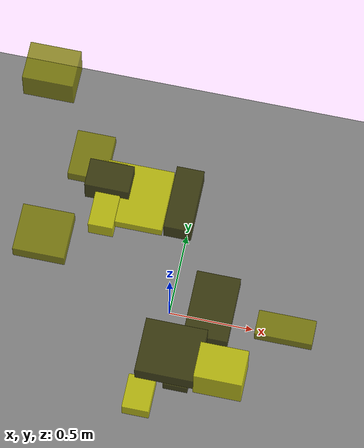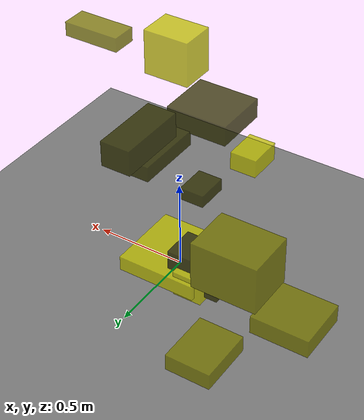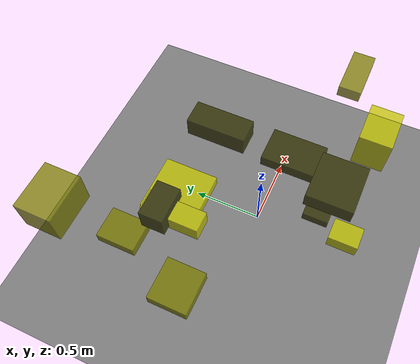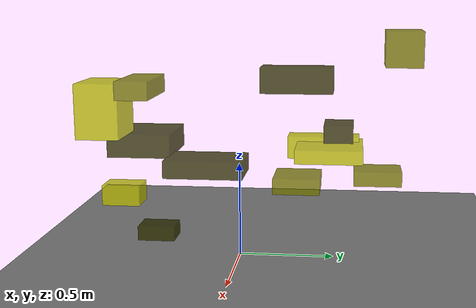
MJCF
<?xml version="1.0"?>
<mujoco model="obstacle_scene">
  <compiler angle="radian" coordinate="local"/>
  <option timestep="0.001" gravity="0 0 -9.81"/>

  <asset>
    <material name="obstacle_mat" rgba="0.8 0.8 0.0 0.8"/>
    <material name="ground_mat" rgba="0.5 0.5 0.5 1"/>
  </asset>

  <worldbody>
    <!-- Ground plane -->
    <geom name="ground" type="plane" size="3 3 0.1" material="ground_mat"/>

    <!-- Obstacles -->
    <body name="obstacle_0" pos="0.106850 -0.472723 0.640422">
      <geom name="obs_0" type="box" size="0.177117 0.159668 0.058212" rgba="0.2 0.2 0.0 0.8"/>
    </body>
    <body name="obstacle_1" pos="-0.808302 0.255024 0.212409">
      <geom name="obs_1" type="box" size="0.154383 0.145162 0.049320" rgba="0.5 0.5 0.0 0.8"/>
    </body>
    <body name="obstacle_2" pos="-0.303674 0.468254 0.517056">
      <geom name="obs_2" type="box" size="0.195074 0.186028 0.037250" rgba="0.8 0.8 0.0 0.8"/>
    </body>
    <body name="obstacle_3" pos="0.271900 -0.128034 0.549743">
      <geom name="obs_3" type="box" size="0.127337 0.195660 0.043335" rgba="0.2 0.2 0.0 0.8"/>
    </body>
    <body name="obstacle_4" pos="0.719147 -0.334562 0.996837">
      <geom name="obs_4" type="box" size="0.160998 0.071200 0.040235" rgba="0.5 0.5 0.0 0.8"/>
    </body>
    <body name="obstacle_5" pos="-0.044526 -0.645489 0.315423">
      <geom name="obs_5" type="box" size="0.078452 0.102288 0.054341" rgba="0.8 0.8 0.0 0.8"/>
    </body>
    <body name="obstacle_6" pos="-0.464346 0.516525 0.562129">
      <geom name="obs_6" type="box" size="0.129811 0.083617 0.088259" rgba="0.2 0.2 0.0 0.8"/>
    </body>
    <body name="obstacle_7" pos="-0.627058 0.749662 0.305957">
      <geom name="obs_7" type="box" size="0.114045 0.141320 0.042794" rgba="0.5 0.5 0.0 0.8"/>
    </body>
    <body name="obstacle_8" pos="0.412711 -0.596661 0.851935">
      <geom name="obs_8" type="box" size="0.135854 0.103102 0.131894" rgba="0.8 0.8 0.0 0.8"/>
    </body>
    <body name="obstacle_9" pos="0.014867 0.307259 0.955882">
      <geom name="obs_9" type="box" size="0.078167 0.186944 0.066609" rgba="0.2 0.2 0.0 0.8"/>
    </body>
    <body name="obstacle_10" pos="-0.874757 0.902552 1.054270">
      <geom name="obs_10" type="box" size="0.146479 0.112719 0.109185" rgba="0.5 0.5 0.0 0.8"/>
    </body>
    <body name="obstacle_11" pos="-0.457139 0.429990 0.515854">
      <geom name="obs_11" type="box" size="0.072354 0.204597 0.063268" rgba="0.8 0.8 0.0 0.8"/>
    </body>
    <body name="obstacle_12" pos="0.137221 -0.411900 0.164157">
      <geom name="obs_12" type="box" size="0.072673 0.095386 0.036734" rgba="0.2 0.2 0.0 0.8"/>
    </body>
  </worldbody>
</mujoco>
